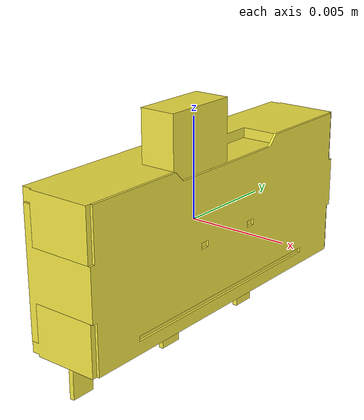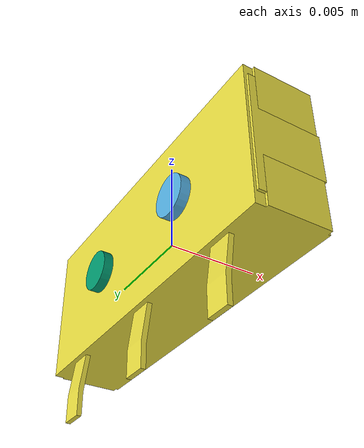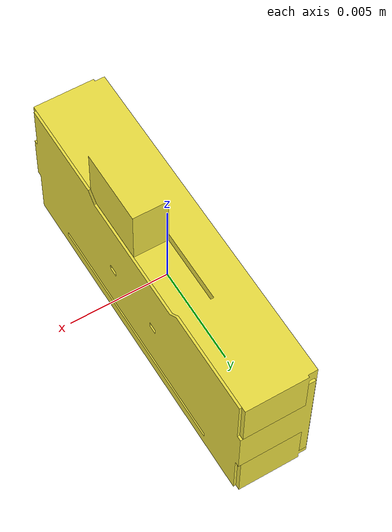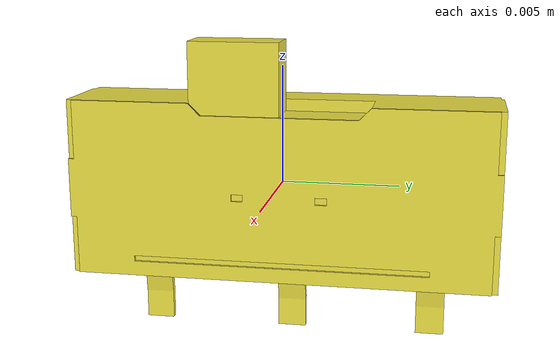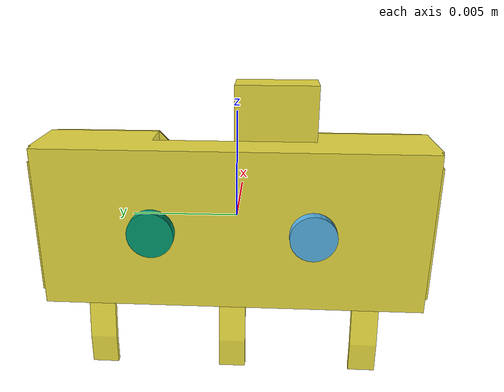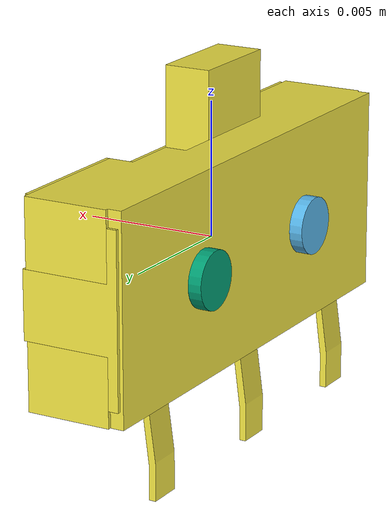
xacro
<robot name="partnet_10c0afc22a875d09cb1cbe8af9750ec6" xmlns:xacro="http://wiki.ros.org/xacro">
	<xacro:property name="scale" value="100" /><link name="base" />
	<link name="link_0">
		<visual name="switch-1">
			<origin xyz="${0 / scale} ${0 / scale} ${0 / scale}" />
			<geometry>
				<mesh filename="package://switch_description/urdf/100847/textured_objs/original-9.obj" scale="${1 / scale} ${1 / scale} ${1 / scale}" />
			</geometry>
		</visual>
		<collision>
			<origin xyz="${0 / scale} ${0 / scale} ${0 / scale}" />
			<geometry>
				<mesh filename="package://switch_description/urdf/100847/textured_objs/original-9.obj" scale="${1 / scale} ${1 / scale} ${1 / scale}" />
			</geometry>
		</collision>
	</link>
	<joint name="joint_0" type="prismatic">
		<origin xyz="${0 / scale} ${0 / scale} ${0 / scale}" />
		<axis xyz="0 0 -1" />
		<child link="link_0" />
		<parent link="link_2" />
		<limit lower="${0 / scale}" upper="${0.04800000000000004 / scale}" effort="10.0" velocity="0.1" />
	</joint>
	<link name="link_1">
		<visual name="switch-2">
			<origin xyz="${0 / scale} ${0 / scale} ${0 / scale}" />
			<geometry>
				<mesh filename="package://switch_description/urdf/100847/textured_objs/original-8.obj" scale="${1 / scale} ${1 / scale} ${1 / scale}" />
			</geometry>
		</visual>
		<collision>
			<origin xyz="${0 / scale} ${0 / scale} ${0 / scale}" />
			<geometry>
				<mesh filename="package://switch_description/urdf/100847/textured_objs/original-8.obj" scale="${1 / scale} ${1 / scale} ${1 / scale}" />
			</geometry>
		</collision>
	</link>
	<joint name="joint_1" type="prismatic">
		<origin xyz="${0 / scale} ${0 / scale} ${0 / scale}" />
		<axis xyz="0 0 -1" />
		<child link="link_1" />
		<parent link="link_2" />
		<limit lower="${0 / scale}" upper="${0.04800000000000004 / scale}" effort="10.0" velocity="0.1" />
	</joint>
	<link name="link_2">
		<visual name="base_body-3">
			<origin xyz="${0 / scale} ${0 / scale} ${0 / scale}" />
			<geometry>
				<mesh filename="package://switch_description/urdf/100847/textured_objs/original-4.obj" scale="${1 / scale} ${1 / scale} ${1 / scale}" />
			</geometry>
		</visual>
		<visual name="base_body-3">
			<origin xyz="${0 / scale} ${0 / scale} ${0 / scale}" />
			<geometry>
				<mesh filename="package://switch_description/urdf/100847/textured_objs/original-3.obj" scale="${1 / scale} ${1 / scale} ${1 / scale}" />
			</geometry>
		</visual>
		<visual name="base_body-3">
			<origin xyz="${0 / scale} ${0 / scale} ${0 / scale}" />
			<geometry>
				<mesh filename="package://switch_description/urdf/100847/textured_objs/original-2.obj" scale="${1 / scale} ${1 / scale} ${1 / scale}" />
			</geometry>
		</visual>
		<visual name="base_body-3">
			<origin xyz="${0 / scale} ${0 / scale} ${0 / scale}" />
			<geometry>
				<mesh filename="package://switch_description/urdf/100847/textured_objs/original-13.obj" scale="${1 / scale} ${1 / scale} ${1 / scale}" />
			</geometry>
		</visual>
		<visual name="base_body-3">
			<origin xyz="${0 / scale} ${0 / scale} ${0 / scale}" />
			<geometry>
				<mesh filename="package://switch_description/urdf/100847/textured_objs/original-5.obj" scale="${1 / scale} ${1 / scale} ${1 / scale}" />
			</geometry>
		</visual>
		<visual name="base_body-3">
			<origin xyz="${0 / scale} ${0 / scale} ${0 / scale}" />
			<geometry>
				<mesh filename="package://switch_description/urdf/100847/textured_objs/original-6.obj" scale="${1 / scale} ${1 / scale} ${1 / scale}" />
			</geometry>
		</visual>
		<visual name="base_body-3">
			<origin xyz="${0 / scale} ${0 / scale} ${0 / scale}" />
			<geometry>
				<mesh filename="package://switch_description/urdf/100847/textured_objs/original-15.obj" scale="${1 / scale} ${1 / scale} ${1 / scale}" />
			</geometry>
		</visual>
		<visual name="base_body-3">
			<origin xyz="${0 / scale} ${0 / scale} ${0 / scale}" />
			<geometry>
				<mesh filename="package://switch_description/urdf/100847/textured_objs/original-11.obj" scale="${1 / scale} ${1 / scale} ${1 / scale}" />
			</geometry>
		</visual>
		<visual name="base_body-3">
			<origin xyz="${0 / scale} ${0 / scale} ${0 / scale}" />
			<geometry>
				<mesh filename="package://switch_description/urdf/100847/textured_objs/original-12.obj" scale="${1 / scale} ${1 / scale} ${1 / scale}" />
			</geometry>
		</visual>
		<visual name="base_body-3">
			<origin xyz="${0 / scale} ${0 / scale} ${0 / scale}" />
			<geometry>
				<mesh filename="package://switch_description/urdf/100847/textured_objs/original-7.obj" scale="${1 / scale} ${1 / scale} ${1 / scale}" />
			</geometry>
		</visual>
		<visual name="base_body-3">
			<origin xyz="${0 / scale} ${0 / scale} ${0 / scale}" />
			<geometry>
				<mesh filename="package://switch_description/urdf/100847/textured_objs/original-1.obj" scale="${1 / scale} ${1 / scale} ${1 / scale}" />
			</geometry>
		</visual>
		<visual name="base_body-3">
			<origin xyz="${0 / scale} ${0 / scale} ${0 / scale}" />
			<geometry>
				<mesh filename="package://switch_description/urdf/100847/textured_objs/original-10.obj" scale="${1 / scale} ${1 / scale} ${1 / scale}" />
			</geometry>
		</visual>
		<visual name="base_body-3">
			<origin xyz="${0 / scale} ${0 / scale} ${0 / scale}" />
			<geometry>
				<mesh filename="package://switch_description/urdf/100847/textured_objs/original-14.obj" scale="${1 / scale} ${1 / scale} ${1 / scale}" />
			</geometry>
		</visual>
		<collision>
			<origin xyz="${0 / scale} ${0 / scale} ${0 / scale}" />
			<geometry>
				<mesh filename="package://switch_description/urdf/100847/textured_objs/original-4.obj" scale="${1 / scale} ${1 / scale} ${1 / scale}" />
			</geometry>
		</collision>
		<collision>
			<origin xyz="${0 / scale} ${0 / scale} ${0 / scale}" />
			<geometry>
				<mesh filename="package://switch_description/urdf/100847/textured_objs/original-3.obj" scale="${1 / scale} ${1 / scale} ${1 / scale}" />
			</geometry>
		</collision>
		<collision>
			<origin xyz="${0 / scale} ${0 / scale} ${0 / scale}" />
			<geometry>
				<mesh filename="package://switch_description/urdf/100847/textured_objs/original-2.obj" scale="${1 / scale} ${1 / scale} ${1 / scale}" />
			</geometry>
		</collision>
		<collision>
			<origin xyz="${0 / scale} ${0 / scale} ${0 / scale}" />
			<geometry>
				<mesh filename="package://switch_description/urdf/100847/textured_objs/original-13.obj" scale="${1 / scale} ${1 / scale} ${1 / scale}" />
			</geometry>
		</collision>
		<collision>
			<origin xyz="${0 / scale} ${0 / scale} ${0 / scale}" />
			<geometry>
				<mesh filename="package://switch_description/urdf/100847/textured_objs/original-5.obj" scale="${1 / scale} ${1 / scale} ${1 / scale}" />
			</geometry>
		</collision>
		<collision>
			<origin xyz="${0 / scale} ${0 / scale} ${0 / scale}" />
			<geometry>
				<mesh filename="package://switch_description/urdf/100847/textured_objs/original-6.obj" scale="${1 / scale} ${1 / scale} ${1 / scale}" />
			</geometry>
		</collision>
		<collision>
			<origin xyz="${0 / scale} ${0 / scale} ${0 / scale}" />
			<geometry>
				<mesh filename="package://switch_description/urdf/100847/textured_objs/original-15.obj" scale="${1 / scale} ${1 / scale} ${1 / scale}" />
			</geometry>
		</collision>
		<collision>
			<origin xyz="${0 / scale} ${0 / scale} ${0 / scale}" />
			<geometry>
				<mesh filename="package://switch_description/urdf/100847/textured_objs/original-11.obj" scale="${1 / scale} ${1 / scale} ${1 / scale}" />
			</geometry>
		</collision>
		<collision>
			<origin xyz="${0 / scale} ${0 / scale} ${0 / scale}" />
			<geometry>
				<mesh filename="package://switch_description/urdf/100847/textured_objs/original-12.obj" scale="${1 / scale} ${1 / scale} ${1 / scale}" />
			</geometry>
		</collision>
		<collision>
			<origin xyz="${0 / scale} ${0 / scale} ${0 / scale}" />
			<geometry>
				<mesh filename="package://switch_description/urdf/100847/textured_objs/original-7.obj" scale="${1 / scale} ${1 / scale} ${1 / scale}" />
			</geometry>
		</collision>
		<collision>
			<origin xyz="${0 / scale} ${0 / scale} ${0 / scale}" />
			<geometry>
				<mesh filename="package://switch_description/urdf/100847/textured_objs/original-1.obj" scale="${1 / scale} ${1 / scale} ${1 / scale}" />
			</geometry>
		</collision>
		<collision>
			<origin xyz="${0 / scale} ${0 / scale} ${0 / scale}" />
			<geometry>
				<mesh filename="package://switch_description/urdf/100847/textured_objs/original-10.obj" scale="${1 / scale} ${1 / scale} ${1 / scale}" />
			</geometry>
		</collision>
		<collision>
			<origin xyz="${0 / scale} ${0 / scale} ${0 / scale}" />
			<geometry>
				<mesh filename="package://switch_description/urdf/100847/textured_objs/original-14.obj" scale="${1 / scale} ${1 / scale} ${1 / scale}" />
			</geometry>
		</collision>
	</link>
	<joint name="joint_2" type="fixed">
		<origin rpy="1.570796326794897 0 -1.570796326794897" xyz="${0 / scale} ${0 / scale} ${0 / scale}" />
		<child link="link_2" />
		<parent link="base" />
	</joint>
</robot>
